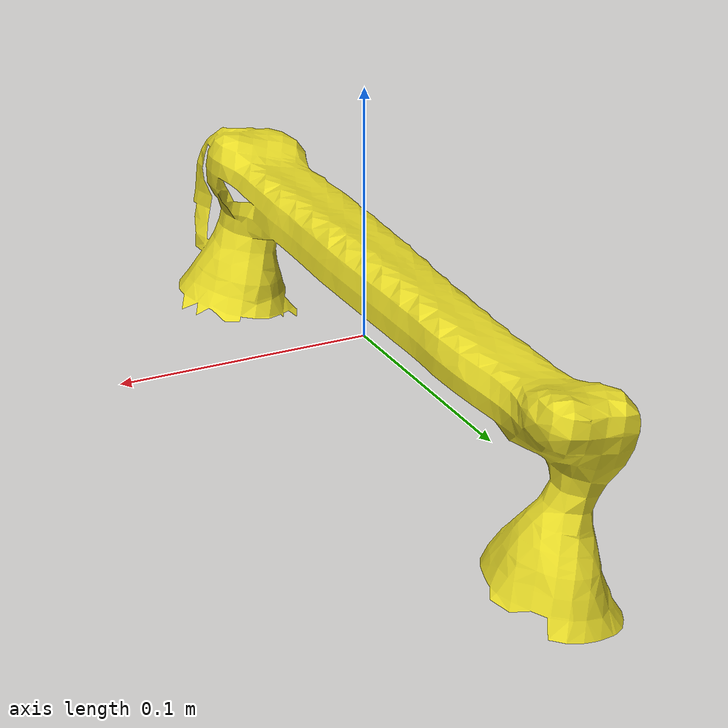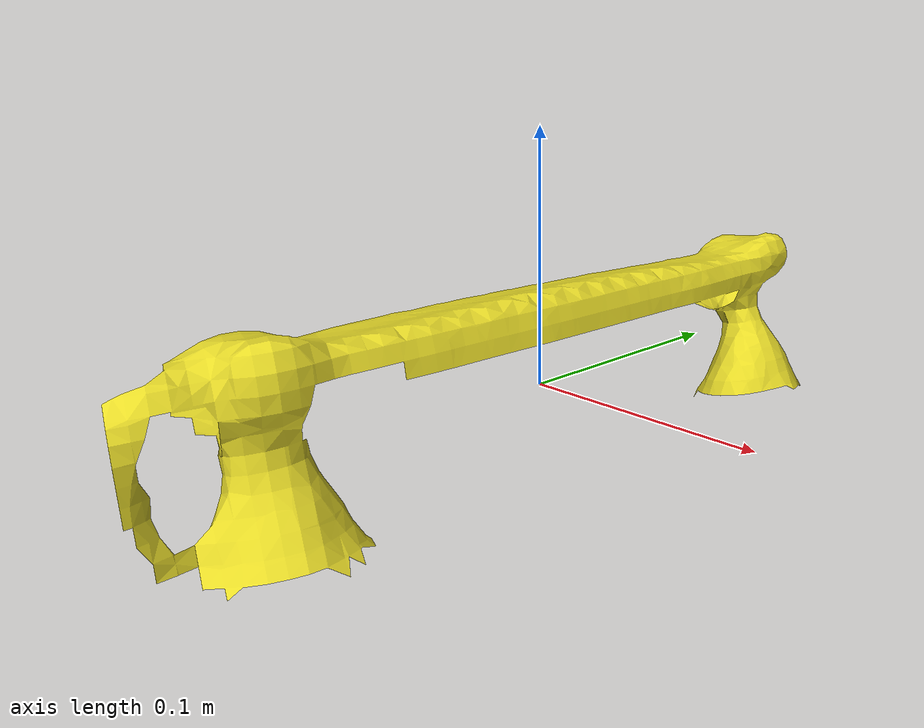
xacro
<?xml version="1.0"?>
<robot name="handrail_model"
       xmlns:xi="http://www.w3.org/2001/XInclude"
       xmlns:gazebo="http://playerstage.sourceforge.net/gazebo/xmlschema/#gz"
       xmlns:model="http://playerstage.sourceforge.net/gazebo/xmlschema/#model"
       xmlns:sensor="http://playerstage.sourceforge.net/gazebo/xmlschema/#sensor"
       xmlns:body="http://playerstage.sourceforge.net/gazebo/xmlschema/#body"
       xmlns:geom="http://playerstage.sourceforge.net/gazebo/xmlschema/#geom"
       xmlns:joint="http://playerstage.sourceforge.net/gazebo/xmlschema/#joint"
       xmlns:interface="http://playerstage.sourceforge.net/gazebo/xmlschema/#interface"
       xmlns:rendering="http://playerstage.sourceforge.net/gazebo/xmlschema/#rendering"
       xmlns:renderable="http://playerstage.sourceforge.net/gazebo/xmlschema/#renderable"
       xmlns:controller="http://playerstage.sourceforge.net/gazebo/xmlschema/#controller"
       xmlns:physics="http://playerstage.sourceforge.net/gazebo/xmlschema/#physics">

  <link name="handrail">
    <inertial>
      <mass value="0.36" />
      <origin xyz="0 0.015 0" />
      <inertia  ixx="1" ixy="0.0"  ixz="0.0"  iyy="1"  iyz="0.0"  izz="1" />
    </inertial>
    <visual>
      <origin xyz="0 0 0" rpy="1.57 0 1.57" />
      <geometry>
        <mesh filename="package://r2_gazebo/Media/models/objects/handrail.dae" />
      </geometry>
    </visual>
    <collision>
      <origin xyz="0 0 0" rpy="1.57 0 1.57" />
      <geometry>
        <mesh filename="package://r2_gazebo/Media/models/objects/handrail.dae" />
      </geometry>
    </collision>
  </link>

  <gazebo reference="handrail">
    <material>Gazebo/Yellow</material>
    <turnGravityOff>false</turnGravityOff>
 </gazebo>
</robot>
